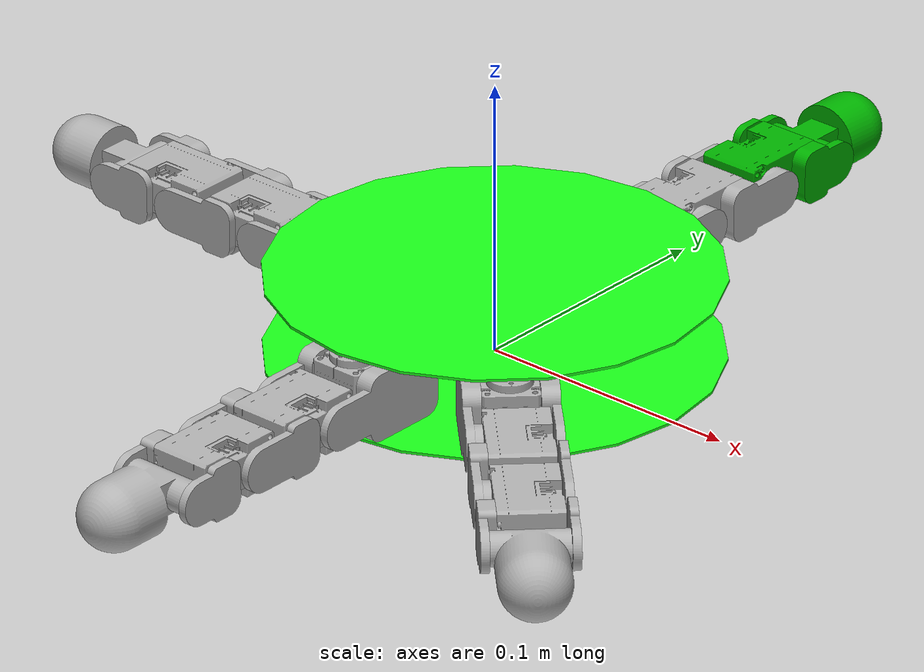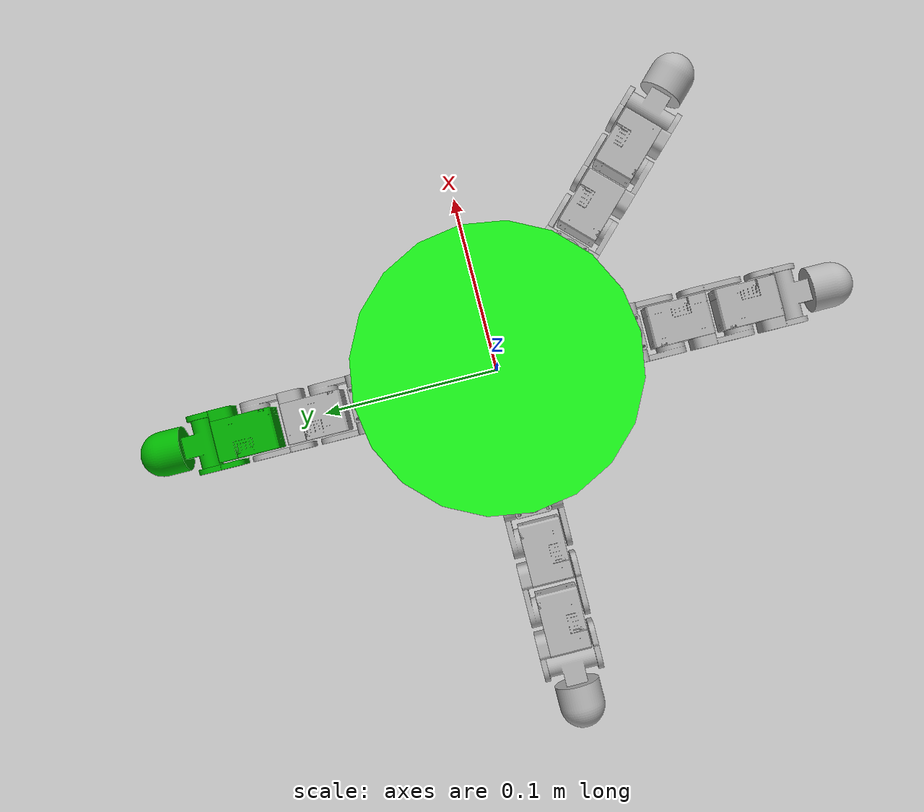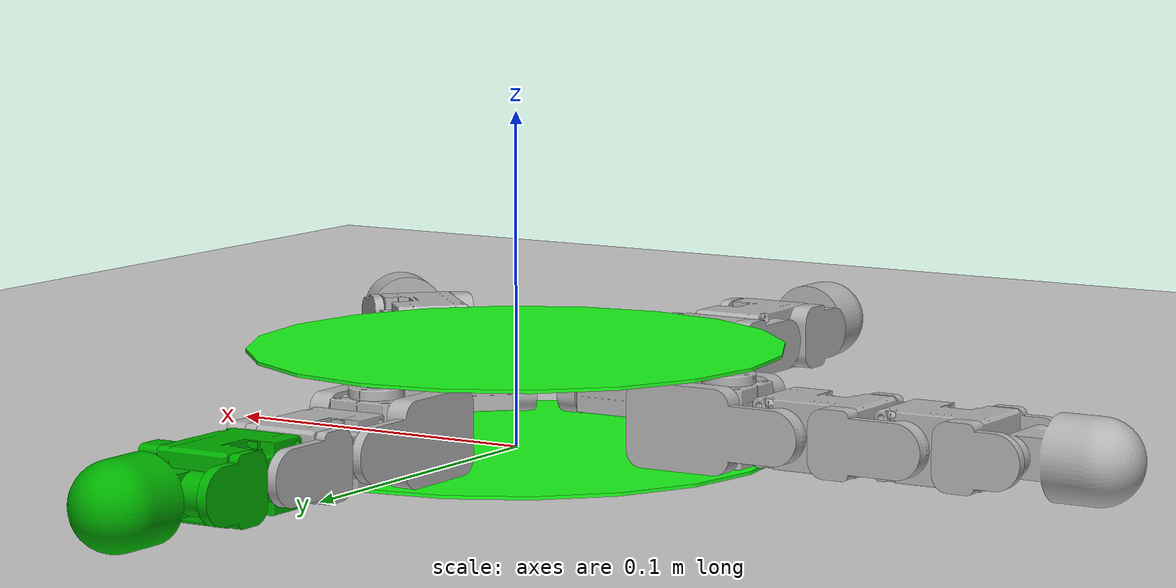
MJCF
<mujoco model="iiwa7">
    <compiler angle="radian" inertiafromgeom="true" meshdir="single_finger/shortest/meshes/"/>
    <size njmax="500" nconmax="100" />

    <option>
        <flag gravity="enable" />
    </option>

    <default>
        <joint limited='true' damping='1' armature='0'/>
        <geom contype='1' conaffinity='1' condim='3' rgba='0.8 0.6 .4 1'
        	margin="0.001" solref=".02 1" solimp=".8 .8 .01" material="geom"/>
    </default>

 <default>
    <joint damping="0.01" frictionloss="0"/>
    <default class="visual">
      <geom contype="0" conaffinity="0"/>
    </default>
    <default class="collision">
      <geom contype="1" conaffinity="1" friction="0.2 0 0.01" solref="-100000 -200"  />
    </default>
      <default class="obj">
      <geom condim="6" friction="1 0.5 0.1"  />
    </default>

      <default class="fingers">
      <geom friction="1 0.5 0.2"  />
    </default>

      <default class="sliding_finger">
      <geom friction="0.001 0. 0"  />
    </default>
      <default class="visual1">
      <geom contype="1" conaffinity="1"/>
    </default>
        <default class="visual2">
     <geom contype="1" conaffinity="1"/>
    </default>
        <default class="visual3">
     <geom contype="1" conaffinity="1"/>
    </default>
        <default class="visual4">
     <geom contype="1" conaffinity="1"/>
    </default>
        <default class="visual5">
      <geom contype="1" conaffinity="1"/>
    </default>

    <site rgba="1 0 0 .5"/>
  </default>

        <asset>
            <mesh name="palm" file="palm_01.stl"  />
            <mesh name="base_link" file="base_link.stl" scale="0.001 0.001 0.001" />
            <mesh name="MCP_spread_motor_1" file="MCP_spread_motor_1.stl" scale="0.001 0.001 0.001" />
            <mesh name="MCP_motor_1" file="MCP_motor_1.stl" scale="0.001 0.001 0.001" />
            <mesh name="proximal_1" file="proximal_1.stl" scale="0.001 0.001 0.001" />
            <mesh name="PIP_DIP_motor_1" file="PIP_DIP_motor_1.stl" scale="0.001 0.001 0.001" />
            <mesh name="middle_1" file="middle_1.stl" scale="0.001 0.001 0.001" />
            <mesh name="distal_1" file="distal_1.stl" scale="0.001 0.001 0.001" />
            <mesh name="metacarpal_1" file="metacarpal_1.stl" scale="0.001 0.001 0.001" />
            <texture name="texgeom" type="cube" builtin="flat" mark="cross" width="127" height="1278"
                rgb1="0.8 0.6 0.4" rgb2="0.8 0.6 0.4" markrgb="1 1 1" random="0.01"/>
            <texture name="texplane" type="2d" builtin="checker" rgb1=".2 .3 .4" rgb2=".1 0.15 0.2"
                width="512" height="512"/>

            <material name='MatPlane' reflectance='0.5' texture="texplane" texrepeat="1 1" texuniform="true"/>
            <material name='geom' texture="texgeom" texuniform="true"/>
             <texture builtin="flat" name="allegro_mount_tex" height="32" width="32" rgb1="0.2 0.2 0.2" type="cube"/>
             <texture builtin="flat" name="hand_tex" height="32" width="32" rgb1="0.2 0.2 0.2 " type="cube"/>
             <texture builtin="flat" name="tip_tex" height="32" width="32" rgb1="0.9 0.9 0.9" type="cube"/>

            <material name="allegro_mount_mat" shininess="0.03" specular="0.25"/>
            <material name="hand_mat" shininess="0.03" specular="0.25" />
            <material name="tip_mat" shininess="0.03" specular="0.25" />
        </asset>

    <worldbody>
        <light pos="0 0 10" castshadow="false"/>
         <light directional='false' diffuse='.8 .8 .8' specular='0.3 0.3 0.3' pos='0 0 4.0' dir='0 -.15 -1'/>
        <body name="world_base" euler="0 0 0" pos="0 0 0.0">
            <geom name="floor" class="collision" type="plane" size="10 10 1" rgba=".8 .8 .8 1" material="MatPlane"/>
        </body>

        <body name="hand_base" euler="0 0 0" pos="0 0 0.0">
             <geom type="mesh"  name="hand_base_1" mesh="palm" mass="0.01"  pos="0 0 0.03" quat="1 0 0 0"  rgba="0.1 1 .1 1"/>
             <geom type="mesh" name="hand_base_2"  mesh="palm" mass="0.01" pos="0 0 0" quat="1 0 0 0"  rgba="0.1 1 .1 1"/>
            <body name="hand">
                        <body name="finger_1" pos="0 0.0725 0.022">
                    <geom type="mesh" rgba="0.7 0.7 0.7 1" mesh="base_link" />
                    <body name="MCP_spread_motor_1" pos="0 0 0.0036">
                        <inertial pos="0.000245265 -0.00496883 -0.0114693" quat="0.524663 0.474196 -0.523113 0.475625" mass="0.21816" diaginertia="5.65844e-05 4.36866e-05 3.19042e-05" />
                        <joint name="MCP_spread_1" type="hinge" pos="0 0 0" axis="0 0 -1" range="-2 2" />
                        <geom pos="0 0 -0.0036" type="mesh" rgba="0.7 0.7 0.7 1" mesh="MCP_spread_motor_1" name="MCP_spread_motor_1"/>
                        <geom pos="0 0 -0.0036" type="mesh" rgba="0.7 0.7 0.7 1" mesh="metacarpal_1" name="metacarpal_1"/>
                        <body name="MCP_motor_1" pos="0.0106 0.0235 -0.0116">
                            <inertial pos="-0.0103512 0.0125458 3.30732e-06" quat="0.535591 0.461692 -0.535523 0.461734" mass="0.151474" diaginertia="3.89252e-05 3.18099e-05 1.61153e-05" />
                            <joint name="MCP_1" type="hinge" pos="0 0 0" axis="-1 0 0" range="-2 2" />
                            <geom pos="-0.0106 -0.0235 0.008" type="mesh" rgba="0.7 0.7 0.7 1" mesh="MCP_motor_1" name="MCP_motor_1"/>
                            <geom pos="-0.0106 -0.0235 0.008" type="mesh" rgba="0.7 0.7 0.7 1" mesh="proximal_1" name="proximal_1"/>
                            <site name="finger_1_link_1" pos="-0.0135 0 0" euler="0 0 0" size="0.005  0.005 0.005"/>
                            <body name="PIP_DIP_motor_1" pos="0 0.039 0">
                                <inertial pos="-0.010709 0.0103943 3.56469e-06" quat="0.533676 0.463904 -0.533611 0.463942" mass="0.140537" diaginertia="2.81223e-05 2.20307e-05 1.40916e-05" />
                                <joint name="PIP_1" type="hinge" pos="0 0 0" axis="-1 0 0" range="-2 2" />
                                <geom pos="-0.0106 -0.0625 0.008" type="mesh" rgba="0 0.7 0 1" mesh="PIP_DIP_motor_1" name="PIP_DIP_motor_1" />
                                <geom pos="-0.0106 -0.0625 0.008" type="mesh" rgba="0 0.7 0 1" mesh="middle_1" name="middle_1"/>
                                <site name="finger_1_link_2" pos="-0.0135 0 0" euler="0 0 0" size="0.005  0.005 0.005"/>
                                <body name="distal_1" pos="0.0029 0.0305 0">
                                    <inertial pos="-0.0135 0.0167496 0" quat="0.5 0.5 -0.5 0.5" mass="0.112487" diaginertia="1.8e-05 1.7e-05 8e-06" />
                                    <joint name="DIP_1" type="hinge" pos="0 0 0" axis="-1 0 0"  range="-2 2"/>
                                    <geom pos="-0.0135 -0.093 0.008" type="mesh" rgba="0 0.7 0 1" mesh="distal_1" name="distal_1"/>
                                    <site name="finger_1_tip" pos="-0.0135 0.026 0" euler="0 0 0" size="0.005  0.005 0.005"/>
                                </body>
                            </body>
                        </body>
                    </body>
             </body>

            <body name="finger_2" pos="-0.0725 0 0.022" quat="1 0 0 1">
                    <geom type="mesh" rgba="0.7 0.7 0.7 1" mesh="base_link" />
                    <body name="MCP_spread_motor_2" pos="0 0 0.0036">
                        <inertial pos="0.000245265 -0.00496883 -0.0114693" quat="0.524663 0.474196 -0.523113 0.475625" mass="0.21816" diaginertia="5.65844e-05 4.36866e-05 3.19042e-05" />
                        <joint name="MCP_spread_2" type="hinge" pos="0 0 0" axis="0 0 -1" range="-2 2" />
                        <geom pos="0 0 -0.0036" type="mesh" rgba="0.7 0.7 0.7 1" mesh="MCP_spread_motor_1" name="MCP_spread_motor_2"/>
                        <geom pos="0 0 -0.0036" type="mesh" rgba="0.7 0.7 0.7 1" mesh="metacarpal_1" name="metacarpal_2"/>
                        <body name="MCP_motor_2" pos="0.0106 0.0235 -0.0116">
                            <inertial pos="-0.0103512 0.0125458 3.30732e-06" quat="0.535591 0.461692 -0.535523 0.461734" mass="0.151474" diaginertia="3.89252e-05 3.18099e-05 1.61153e-05" />
                            <joint name="MCP_2" type="hinge" pos="0 0 0" axis="-1 0 0" range="-2 2" />
                            <geom pos="-0.0106 -0.0235 0.008" type="mesh" rgba="0.7 0.7 0.7 1" mesh="MCP_motor_1" name="MCP_motor_2" />
                            <geom pos="-0.0106 -0.0235 0.008" type="mesh" rgba="0.7 0.7 0.7 1" mesh="proximal_1" name="proximal_2"/>
                            <site name="finger_2_link_1" pos="-0.0135 0 0" euler="0 0 0" size="0.005  0.005 0.005"/>
                            <body name="PIP_DIP_motor_2" pos="0 0.039 0">
                                <inertial pos="-0.010709 0.0103943 3.56469e-06" quat="0.533676 0.463904 -0.533611 0.463942" mass="0.140537" diaginertia="2.81223e-05 2.20307e-05 1.40916e-05" />
                                <joint name="PIP_2" type="hinge" pos="0 0 0" axis="-1 0 0" range="-2 2" />
                                <geom pos="-0.0106 -0.0625 0.008" type="mesh" rgba="0.7 0.7 0.7 1" mesh="PIP_DIP_motor_1" name="PIP_DIP_motor_2"/>
                                <geom pos="-0.0106 -0.0625 0.008" type="mesh" rgba="0.7 0.7 0.7 1" mesh="middle_1" name="middle_2"/>
                                <site name="finger_2_link_2" pos="-0.0135 0 0" euler="0 0 0" size="0.005  0.005 0.005"/>
                                <body name="distal_2" pos="0.0029 0.0305 0">
                                    <inertial pos="-0.0135 0.0167496 0" quat="0.5 0.5 -0.5 0.5" mass="0.112487" diaginertia="1.8e-05 1.7e-05 8e-06" />
                                    <joint name="DIP_2" type="hinge" pos="0 0 0" axis="-1 0 0"  range="-2 2"/>
                                    <geom pos="-0.0135 -0.093 0.008" type="mesh" rgba="0.7 0.7 0.7 1" mesh="distal_1" name="distal_2"/>
                                    <site name="finger_2_tip" pos="-0.0135 0.026 0" euler="0 0 0" size="0.005  0.005 0.005"/>
                                </body>
                            </body>
                        </body>
                    </body>
             </body>

            <body name="finger_4" pos="0 -0.0725  0.022 " quat="0 0 0 1">
                    <geom type="mesh" rgba="0.7 0.7 0.7 1" mesh="base_link" />
                    <body name="MCP_spread_motor_4" pos="0 0 0.0036">
                        <inertial pos="0.000245265 -0.00496883 -0.0114693" quat="0.524663 0.474196 -0.523113 0.475625" mass="0.21816" diaginertia="5.65844e-05 4.36866e-05 3.19042e-05" />
                        <joint name="MCP_spread_4" type="hinge" pos="0 0 0" axis="0 0 -1" range="-2 2" />
                        <geom pos="0 0 -0.0036" type="mesh" rgba="0.7 0.7 0.7 1" mesh="MCP_spread_motor_1" name="MCP_spread_motor_4"/>
                        <geom pos="0 0 -0.0036" type="mesh" rgba="0.7 0.7 0.7 1" mesh="metacarpal_1" name="metacarpal_4"/>
                        <body name="MCP_motor_4" pos="0.0106 0.0235 -0.0116">
                            <inertial pos="-0.0103512 0.0125458 3.30732e-06" quat="0.535591 0.461692 -0.535523 0.461734" mass="0.151474" diaginertia="3.89252e-05 3.18099e-05 1.61153e-05" />
                            <joint name="MCP_4" type="hinge"  pos="0 0 0" axis="-1 0 0" range="-2 2" />
                            <geom pos="-0.0106 -0.0235 0.008" type="mesh" rgba="0.7 0.7 0.7 1" mesh="MCP_motor_1" name="MCP_motor_4"/>
                            <geom pos="-0.0106 -0.0235 0.008" type="mesh" rgba="0.7 0.7 0.7 1" mesh="proximal_1" name="proximal_4"/>
                            <site name="finger_4_link_1" pos="-0.0135 0 0" euler="0 0 0" size="0.005  0.005 0.005"/>
                            <body name="PIP_DIP_motor_4" pos="0 0.039 0">
                                <inertial pos="-0.010709 0.0103943 3.56469e-06" quat="0.533676 0.463904 -0.533611 0.463942" mass="0.140537" diaginertia="2.81223e-05 2.20307e-05 1.40916e-05" />
                                <joint name="PIP_4" type="hinge" pos="0 0 0" axis="-1 0 0" range="-2 2" />
                                <geom pos="-0.0106 -0.0625 0.008" type="mesh" rgba="0.7 0.7 0.7 1" mesh="PIP_DIP_motor_1" name="PIP_DIP_motor_4" />
                                <geom pos="-0.0106 -0.0625 0.008" type="mesh" rgba="0.7 0.7 0.7 1" mesh="middle_1" name="middle_4"/>
                                <site name="finger_4_link_2" pos="-0.0135 0 0" euler="0 0 0" size="0.005  0.005 0.005"/>
                                <body name="distal_4" pos="0.0029 0.0305 0">
                                    <inertial pos="-0.0135 0.0167496 0" quat="0.5 0.5 -0.5 0.5" mass="0.112487" diaginertia="1.8e-05 1.7e-05 8e-06" />
                                    <joint name="DIP_4" type="hinge" pos="0 0 0" axis="-1 0 0"  range="-2 2"/>
                                    <geom pos="-0.0135 -0.093 0.008" type="mesh" rgba="0.7 0.7 0.7 1" mesh="distal_1" name="distal_4"/>
                                    <site name="finger_4_tip" pos="-0.0135 0.026 0" euler="0 0 0" size="0.005  0.005 0.005"/>
                                </body>
                            </body>
                        </body>
                    </body>
             </body>

            <body name="finger_5"  pos="0.0512652416360247 -0.05126524163602469 0.022" quat="-0.38268343  0.         -0.          0.92387953">
                <geom type="mesh" rgba="0.7 0.7 0.7 1" mesh="base_link" />
                    <body name="MCP_spread_motor_5" pos="0 0 0.0036">
                        <inertial pos="0.000245265 -0.00496883 -0.0114693" quat="0.524663 0.474196 -0.523113 0.475625" mass="0.21816" diaginertia="5.65844e-05 4.36866e-05 3.19042e-05" />
                        <joint name="MCP_spread_5" type="hinge" pos="0 0 0" axis="0 0 -1" range="-2 2" />
                        <geom pos="0 0 -0.0036" type="mesh" rgba="0.7 0.7 0.7 1" mesh="MCP_spread_motor_1" name="MCP_spread_motor_5"/>
                        <geom pos="0 0 -0.0036" type="mesh" rgba="0.7 0.7 0.7 1" mesh="metacarpal_1" name="metacarpal_5"/>
                        <body name="MCP_motor_5" pos="0.0106 0.0235 -0.0116">
                            <inertial pos="-0.0103512 0.0125458 3.30732e-06" quat="0.535591 0.461692 -0.535523 0.461734" mass="0.151474" diaginertia="3.89252e-05 3.18099e-05 1.61153e-05" />
                            <joint name="MCP_5" type="hinge" pos="0 0 0" axis="-1 0 0" range="-2 2" />
                            <geom pos="-0.0106 -0.0235 0.008" type="mesh" rgba="0.7 0.7 0.7 1" mesh="MCP_motor_1" name="MCP_motor_5"/>
                            <geom pos="-0.0106 -0.0235 0.008" type="mesh" rgba="0.7 0.7 0.7 1" mesh="proximal_1" name="proximal_5"/>
                            <site name="finger_5_link_1" pos="-0.0135 0 0" euler="0 0 0" size="0.005  0.005 0.005"/>
                            <body name="PIP_DIP_motor_5" pos="0 0.039 0">
                                <inertial pos="-0.010709 0.0103943 3.56469e-06" quat="0.533676 0.463904 -0.533611 0.463942" mass="0.140537" diaginertia="2.81223e-05 2.20307e-05 1.40916e-05" />
                                <joint name="PIP_5" type="hinge" pos="0 0 0" axis="-1 0 0" range="-2 2" />
                                <geom pos="-0.0106 -0.0625 0.008" type="mesh" rgba="0.7 0.7 0.7 1" mesh="PIP_DIP_motor_1" name="PIP_DIP_motor_5"/>
                                <geom pos="-0.0106 -0.0625 0.008" type="mesh" rgba="0.7 0.7 0.7 1" mesh="middle_1" name="middle_5"/>
                                <site name="finger_5_link_2" pos="-0.0135 0 0" euler="0 0 0" size="0.005  0.005 0.005"/>
                                <body name="distal_5" pos="0.0029 0.0305 0">
                                    <inertial pos="-0.0135 0.0167496 0" quat="0.5 0.5 -0.5 0.5" mass="0.112487" diaginertia="1.8e-05 1.7e-05 8e-06" />
                                    <joint name="DIP_5" type="hinge" pos="0 0 0" axis="-1 0 0"  range="-2 2"/>
                                    <geom class="sliding_finger" pos="-0.0135 -0.093 0.008" type="mesh" rgba="0.7 0.7 0.7 1" mesh="distal_1" name="distal_5"/>
                                    <site name="finger_5_tip" pos="-0.0135 0.026 0" euler="0 0 0" size="0.005  0.005 0.005"/>
                                </body>
                            </body>
                        </body>
                    </body>
             </body>
            </body>
        </body>

    </worldbody>

      <actuator>
          <motor name="joint_11" ctrllimited="true" ctrlrange="-3 3" joint="MCP_spread_1"/>
          <motor name="joint_12" ctrllimited="true" ctrlrange="-3 3" joint="MCP_1"/>
          <motor name="joint_13" ctrllimited="true" ctrlrange="-3 3" joint="PIP_1"/>
          <motor name="joint_14" ctrllimited="true" ctrlrange="-3 3" joint="DIP_1"/>
          <motor name="joint_21" ctrllimited="true" ctrlrange="-3 3" joint="MCP_spread_2"/>
          <motor name="joint_22" ctrllimited="true" ctrlrange="-3 3" joint="MCP_2"/>
          <motor name="joint_23" ctrllimited="true" ctrlrange="-3 3" joint="PIP_2"/>
          <motor name="joint_24" ctrllimited="true" ctrlrange="-3 3" joint="DIP_2"/>
          <motor name="joint_41" ctrllimited="true" ctrlrange="-3 3" joint="MCP_spread_4"/>
          <motor name="joint_42" ctrllimited="true" ctrlrange="-3 3" joint="MCP_4"/>
          <motor name="joint_43" ctrllimited="true" ctrlrange="-3 3" joint="PIP_4"/>
          <motor name="joint_44" ctrllimited="true" ctrlrange="-3 3" joint="DIP_4"/>
          <motor name="joint_51" ctrllimited="true" ctrlrange="-3 3" joint="MCP_spread_5"/>
          <motor name="joint_52" ctrllimited="true" ctrlrange="-3 3" joint="MCP_5"/>
          <motor name="joint_53" ctrllimited="true" ctrlrange="-3 3" joint="PIP_5"/>
          <motor name="joint_54" ctrllimited="true" ctrlrange="-3 3" joint="DIP_5"/>
    </actuator>

</mujoco>
